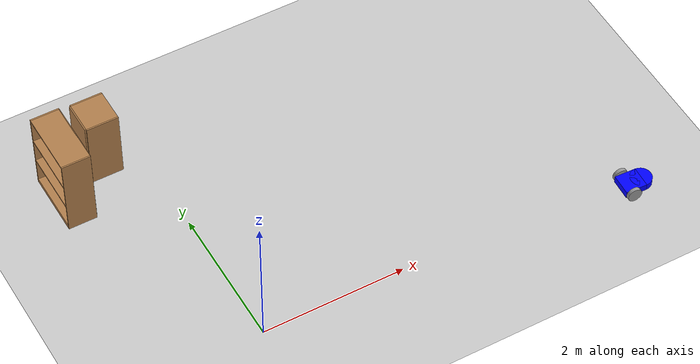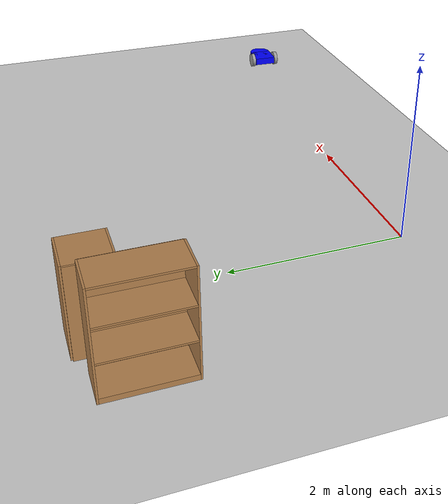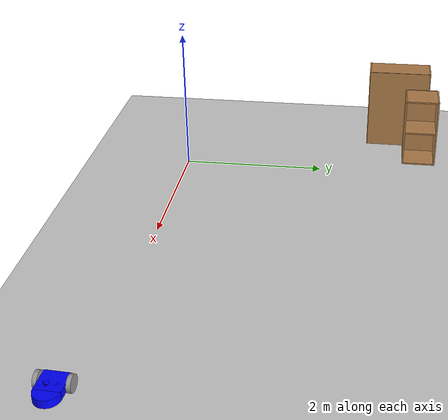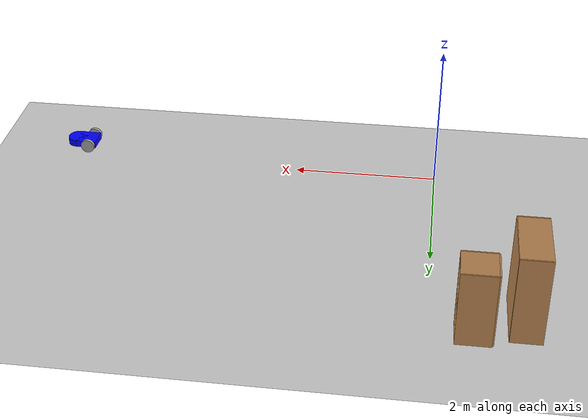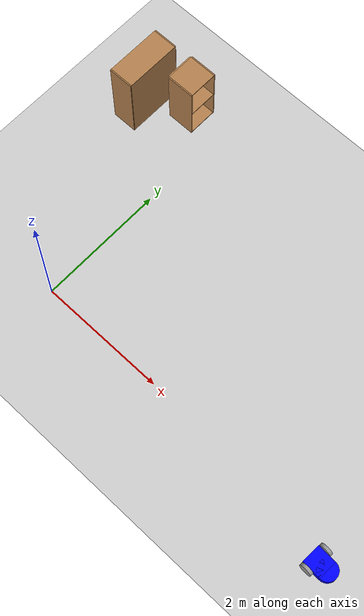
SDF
<sdf version="1.6">
 <world name="default">
  <model name="ground_plane">
   <static>1</static>
   <link name="link">
    <collision name="collision">
     <geometry><plane><normal>0 0 1</normal><size>100 100</size></plane></geometry>
     <surface>
      <contact><collide_bitmask>65535</collide_bitmask></contact>
      <friction><ode><mu>100</mu><mu2>50</mu2></ode></friction>
     </surface>
    </collision>
    <visual name="visual">
     <cast_shadows>0</cast_shadows>
     <geometry><plane><normal>0 0 1</normal><size>100 100</size></plane></geometry>
     <material>
      <script><uri>file://media/materials/scripts/gazebo.material</uri><name>Gazebo/Grey</name></script>
     </material>
    </visual>
   </link>
  </model>
  <model name="cabinet_clone_1">
   <static>1</static>
   <link name="cabinet_bottom_plate">
    <inertial>
     <pose>0 0 -1 0 -0 0</pose>
     <inertia><ixx>2.05</ixx><ixy>0</ixy><ixz>0</ixz><iyy>2.05</iyy><iyz>0</iyz><izz>2.05</izz></inertia>
     <mass>25</mass>
    </inertial>
    <collision name="cabinet_bottom_plate_geom">
     <pose>0 0 0.01 0 -0 0</pose>
     <geometry><box><size>0.45 0.45 0.02</size></box></geometry>
    </collision>
    <visual name="cabinet_bottom_plate_geom_visual">
     <pose>0 0 0.01 0 -0 0</pose>
     <geometry><box><size>0.45 0.45 0.02</size></box></geometry>
     <material>
      <script><uri>file://media/materials/scripts/gazebo.material</uri><name>Gazebo/Wood</name></script>
     </material>
    </visual>
    <collision name="cabinet_bottom_plate_geom_cabinet_back_plate">
     <pose>0.235 0 0.51 0 -0 0</pose>
     <geometry><box><size>0.02 0.45 1.02</size></box></geometry>
    </collision>
    <visual name="cabinet_bottom_plate_geom_cabinet_back_plate_visual">
     <pose>0.235 0 0.51 0 -0 0</pose>
     <geometry><box><size>0.02 0.45 1.02</size></box></geometry>
     <material>
      <script><uri>file://media/materials/scripts/gazebo.material</uri><name>Gazebo/Wood</name></script>
     </material>
    </visual>
    <collision name="cabinet_bottom_plate_geom_cabinet_left_plate">
     <pose>0 0.235 0.51 0 -0 0</pose>
     <geometry><box><size>0.45 0.02 1.02</size></box></geometry>
    </collision>
    <visual name="cabinet_bottom_plate_geom_cabinet_left_plate_visual">
     <pose>0 0.235 0.51 0 -0 0</pose>
     <geometry><box><size>0.45 0.02 1.02</size></box></geometry>
     <material>
      <script><uri>file://media/materials/scripts/gazebo.material</uri><name>Gazebo/Wood</name></script>
     </material>
    </visual>
    <collision name="cabinet_bottom_plate_geom_cabinet_middle_plate">
     <pose>0 0 0.51 0 -0 0</pose>
     <geometry><box><size>0.45 0.45 0.02</size></box></geometry>
    </collision>
    <visual name="cabinet_bottom_plate_geom_cabinet_middle_plate_visual">
     <pose>0 0 0.51 0 -0 0</pose>
     <geometry><box><size>0.45 0.45 0.02</size></box></geometry>
     <material>
      <script><uri>file://media/materials/scripts/gazebo.material</uri><name>Gazebo/Wood</name></script>
     </material>
    </visual>
    <collision name="cabinet_bottom_plate_geom_cabinet_right_plate">
     <pose>0 -0.235 0.51 0 -0 0</pose>
     <geometry><box><size>0.45 0.02 1.02</size></box></geometry>
    </collision>
    <visual name="cabinet_bottom_plate_geom_cabinet_right_plate_visual">
     <pose>0 -0.235 0.51 0 -0 0</pose>
     <geometry><box><size>0.45 0.02 1.02</size></box></geometry>
     <material>
      <script><uri>file://media/materials/scripts/gazebo.material</uri><name>Gazebo/Wood</name></script>
     </material>
    </visual>
    <collision name="cabinet_bottom_plate_geom_cabinet_top_plate">
     <pose>0 0 1.01 0 -0 0</pose>
     <geometry><box><size>0.45 0.45 0.02</size></box></geometry>
    </collision>
    <visual name="cabinet_bottom_plate_geom_cabinet_top_plate_visual">
     <pose>0 0 1.01 0 -0 0</pose>
     <geometry><box><size>0.45 0.45 0.02</size></box></geometry>
     <material>
      <script><uri>file://media/materials/scripts/gazebo.material</uri><name>Gazebo/Wood</name></script>
     </material>
    </visual>
   </link>
   <pose>-0.550061 3.45827 0 0 -0 3.1415</pose>
  </model>
  <model name="bookshelf_0">
   <static>1</static>
   <link name="link">
    <inertial><mass>1</mass></inertial>
    <collision name="back">
     <pose>0 0.005 0.6 0 -0 0</pose>
     <geometry><box><size>0.9 0.01 1.2</size></box></geometry>
    </collision>
    <visual name="visual1">
     <pose>0 0.005 0.6 0 -0 0</pose>
     <geometry><box><size>0.9 0.01 1.2</size></box></geometry>
     <material>
      <script><uri>file://media/materials/scripts/gazebo.material</uri><name>Gazebo/Wood</name></script>
     </material>
    </visual>
    <collision name="left_side">
     <pose>0.45 -0.195 0.6 0 -0 0</pose>
     <geometry><box><size>0.02 0.4 1.2</size></box></geometry>
    </collision>
    <visual name="visual2">
     <pose>0.45 -0.195 0.6 0 -0 0</pose>
     <geometry><box><size>0.02 0.4 1.2</size></box></geometry>
     <material>
      <script><uri>file://media/materials/scripts/gazebo.material</uri><name>Gazebo/Wood</name></script>
     </material>
    </visual>
    <collision name="right_side">
     <pose>-0.45 -0.195 0.6 0 -0 0</pose>
     <geometry><box><size>0.02 0.4 1.2</size></box></geometry>
    </collision>
    <visual name="visual3">
     <pose>-0.45 -0.195 0.6 0 -0 0</pose>
     <geometry><box><size>0.02 0.4 1.2</size></box></geometry>
     <material>
      <script><uri>file://media/materials/scripts/gazebo.material</uri><name>Gazebo/Wood</name></script>
     </material>
    </visual>
    <collision name="bottom">
     <pose>0 -0.195 0.03 0 -0 0</pose>
     <geometry><box><size>0.88 0.4 0.06</size></box></geometry>
    </collision>
    <visual name="visual4">
     <pose>0 -0.195 0.03 0 -0 0</pose>
     <geometry><box><size>0.88 0.4 0.06</size></box></geometry>
     <material>
      <script><uri>file://media/materials/scripts/gazebo.material</uri><name>Gazebo/Wood</name></script>
     </material>
    </visual>
    <collision name="top">
     <pose>0 -0.195 1.19 0 -0 0</pose>
     <geometry><box><size>0.88 0.4 0.02</size></box></geometry>
    </collision>
    <visual name="visual5">
     <pose>0 -0.195 1.19 0 -0 0</pose>
     <geometry><box><size>0.88 0.4 0.02</size></box></geometry>
     <material>
      <script><uri>file://media/materials/scripts/gazebo.material</uri><name>Gazebo/Wood</name></script>
     </material>
    </visual>
    <collision name="low_shelf">
     <pose>0 -0.195 0.43 0 -0 0</pose>
     <geometry><box><size>0.88 0.4 0.02</size></box></geometry>
    </collision>
    <visual name="visual6">
     <pose>0 -0.195 0.43 0 -0 0</pose>
     <geometry><box><size>0.88 0.4 0.02</size></box></geometry>
     <material>
      <script><uri>file://media/materials/scripts/gazebo.material</uri><name>Gazebo/Wood</name></script>
     </material>
    </visual>
    <collision name="high_shelf">
     <pose>0 -0.195 0.8 0 -0 0</pose>
     <geometry><box><size>0.88 0.4 0.02</size></box></geometry>
    </collision>
    <visual name="visual7">
     <pose>0 -0.195 0.8 0 -0 0</pose>
     <geometry><box><size>0.88 0.4 0.02</size></box></geometry>
     <material>
      <script><uri>file://media/materials/scripts/gazebo.material</uri><name>Gazebo/Wood</name></script>
     </material>
    </visual>
   </link>
   <pose>-0.982099 3.12059 0 0 0 -1.5708</pose>
  </model>
  <model name="robot-03_1">
   <link name="link_0">
    <pose>-4.44604 -7.61761 0.065 0 -0 0</pose>
    <inertial>
     <mass>1</mass>
     <inertia>
      <ixx>0.166667</ixx>
      <ixy>0</ixy>
      <ixz>0</ixz>
      <iyy>0.166667</iyy>
      <iyz>0</iyz>
      <izz>0.166667</izz>
     </inertia>
    </inertial>
    <visual name="visual">
     <geometry><box><size>0.3 0.3 0.1</size></box></geometry>
     <material>
      <lighting>1</lighting>
      <script><uri>file://media/materials/scripts/gazebo.material</uri><name>Gazebo/Grey</name></script>
      <shader type="pixel"><normal_map>__default__</normal_map></shader>
      <ambient>0.03 0.03 0.3 1</ambient>
      <diffuse>0 0 1 1</diffuse>
      <specular>0.01 0.01 0.01 1</specular>
      <emissive>0 0 0 1</emissive>
     </material>
    </visual>
    <collision name="collision">
     <geometry><box><size>0.3 0.3 0.1</size></box></geometry>
     <surface>
      <friction>
       <ode><mu>1</mu><mu2>1</mu2><fdir1>0 0 0</fdir1><slip1>0</slip1><slip2>0</slip2></ode>
       <torsional>
        <coefficient>1</coefficient>
        <patch_radius>0</patch_radius>
        <surface_radius>0</surface_radius>
        <use_patch_radius>1</use_patch_radius>
        <ode><slip>0</slip></ode>
       </torsional>
      </friction>
      <bounce><restitution_coefficient>0</restitution_coefficient><threshold>1e+06</threshold></bounce>
      <contact>
       <collide_without_contact>0</collide_without_contact>
       <collide_without_contact_bitmask>1</collide_without_contact_bitmask>
       <collide_bitmask>1</collide_bitmask>
       <ode>
        <soft_cfm>0</soft_cfm>
        <soft_erp>0.2</soft_erp>
        <kp>1e+13</kp>
        <kd>1</kd>
        <max_vel>0.01</max_vel>
        <min_depth>0</min_depth>
       </ode>
       <bullet>
        <split_impulse>1</split_impulse>
        <split_impulse_penetration_threshold>-0.01</split_impulse_penetration_threshold>
        <soft_cfm>0</soft_cfm>
        <soft_erp>0.2</soft_erp>
        <kp>1e+13</kp>
        <kd>1</kd>
       </bullet>
      </contact>
     </surface>
    </collision>
   </link>
   <link name="link_1">
    <pose>-4.44604 -7.76761 0.065 0 -0 0</pose>
    <inertial>
     <mass>1</mass>
     <inertia><ixx>0.145833</ixx><ixy>0</ixy><ixz>0</ixz><iyy>0.145833</iyy><iyz>0</iyz><izz>0.125</izz></inertia>
    </inertial>
    <visual name="visual">
     <geometry><cylinder><radius>0.15</radius><length>0.1</length></cylinder></geometry>
     <material>
      <lighting>1</lighting>
      <script><uri>file://media/materials/scripts/gazebo.material</uri><name>Gazebo/Grey</name></script>
      <shader type="pixel"><normal_map>__default__</normal_map></shader>
      <ambient>0.03 0.03 0.3 1</ambient>
      <diffuse>0 0 1 1</diffuse>
      <specular>0.01 0.01 0.01 1</specular>
      <emissive>0 0 0 1</emissive>
     </material>
    </visual>
    <collision name="collision">
     <geometry><cylinder><radius>0.15</radius><length>0.1</length></cylinder></geometry>
     <surface>
      <friction>
       <ode><mu>1</mu><mu2>1</mu2><fdir1>0 0 0</fdir1><slip1>0</slip1><slip2>0</slip2></ode>
       <torsional>
        <coefficient>1</coefficient>
        <patch_radius>0</patch_radius>
        <surface_radius>0</surface_radius>
        <use_patch_radius>1</use_patch_radius>
        <ode><slip>0</slip></ode>
       </torsional>
      </friction>
      <bounce><restitution_coefficient>0</restitution_coefficient><threshold>1e+06</threshold></bounce>
      <contact>
       <collide_without_contact>0</collide_without_contact>
       <collide_without_contact_bitmask>1</collide_without_contact_bitmask>
       <collide_bitmask>1</collide_bitmask>
       <ode>
        <soft_cfm>0</soft_cfm>
        <soft_erp>0.2</soft_erp>
        <kp>1e+13</kp>
        <kd>1</kd>
        <max_vel>0.01</max_vel>
        <min_depth>0</min_depth>
       </ode>
       <bullet>
        <split_impulse>1</split_impulse>
        <split_impulse_penetration_threshold>-0.01</split_impulse_penetration_threshold>
        <soft_cfm>0</soft_cfm>
        <soft_erp>0.2</soft_erp>
        <kp>1e+13</kp>
        <kd>1</kd>
       </bullet>
      </contact>
     </surface>
    </collision>
   </link>
   <link name="link_2">
    <pose>-4.44604 -7.76761 0.015 0 -0 0</pose>
    <inertial>
     <mass>1</mass>
     <inertia><ixx>0.1</ixx><ixy>0</ixy><ixz>0</ixz><iyy>0.1</iyy><iyz>0</iyz><izz>0.1</izz></inertia>
    </inertial>
    <visual name="visual">
     <geometry><sphere><radius>0.05</radius></sphere></geometry>
     <material>
      <lighting>1</lighting>
      <script><uri>file://media/materials/scripts/gazebo.material</uri><name>Gazebo/Grey</name></script>
      <shader type="pixel"><normal_map>__default__</normal_map></shader>
      <ambient>0.5 0.5 0.5 1</ambient>
      <diffuse>0.9 0.9 0.9 1</diffuse>
      <specular>0.01 0.01 0.01 1</specular>
      <emissive>0 0 0 1</emissive>
     </material>
    </visual>
    <collision name="collision">
     <geometry><sphere><radius>0.05</radius></sphere></geometry>
     <surface>
      <friction>
       <ode><mu>1</mu><mu2>1</mu2><fdir1>0 0 0</fdir1><slip1>0</slip1><slip2>0</slip2></ode>
       <torsional>
        <coefficient>1</coefficient>
        <patch_radius>0</patch_radius>
        <surface_radius>0</surface_radius>
        <use_patch_radius>1</use_patch_radius>
        <ode><slip>0</slip></ode>
       </torsional>
      </friction>
      <bounce><restitution_coefficient>0</restitution_coefficient><threshold>1e+06</threshold></bounce>
      <contact>
       <collide_without_contact>0</collide_without_contact>
       <collide_without_contact_bitmask>1</collide_without_contact_bitmask>
       <collide_bitmask>1</collide_bitmask>
       <ode>
        <soft_cfm>0</soft_cfm>
        <soft_erp>0.2</soft_erp>
        <kp>1e+13</kp>
        <kd>1</kd>
        <max_vel>0.01</max_vel>
        <min_depth>0</min_depth>
       </ode>
       <bullet>
        <split_impulse>1</split_impulse>
        <split_impulse_penetration_threshold>-0.01</split_impulse_penetration_threshold>
        <soft_cfm>0</soft_cfm>
        <soft_erp>0.2</soft_erp>
        <kp>1e+13</kp>
        <kd>1</kd>
       </bullet>
      </contact>
     </surface>
    </collision>
   </link>
   <link name="link_3">
    <pose>-4.62604 -7.56761 0.065 3.14159 1.56351 3.14159</pose>
    <inertial>
     <mass>1</mass>
     <inertia><ixx>0.145833</ixx><ixy>0</ixy><ixz>0</ixz><iyy>0.145833</iyy><iyz>0</iyz><izz>0.125</izz></inertia>
    </inertial>
    <visual name="visual">
     <geometry><cylinder><radius>0.1</radius><length>0.05</length></cylinder></geometry>
     <material>
      <lighting>1</lighting>
      <script><uri>file://media/materials/scripts/gazebo.material</uri><name>Gazebo/Grey</name></script>
      <shader type="pixel"><normal_map>__default__</normal_map></shader>
      <ambient>0.2 0.2 0.2 1</ambient>
      <diffuse>0.5 0.5 0.5 1</diffuse>
      <specular>0.01 0.01 0.01 1</specular>
      <emissive>0 0 0 1</emissive>
     </material>
    </visual>
    <collision name="collision">
     <geometry><cylinder><radius>0.1</radius><length>0.05</length></cylinder></geometry>
     <surface>
      <friction>
       <ode><mu>1</mu><mu2>1</mu2><fdir1>0 0 0</fdir1><slip1>0</slip1><slip2>0</slip2></ode>
       <torsional>
        <coefficient>1</coefficient>
        <patch_radius>0</patch_radius>
        <surface_radius>0</surface_radius>
        <use_patch_radius>1</use_patch_radius>
        <ode><slip>0</slip></ode>
       </torsional>
      </friction>
      <bounce><restitution_coefficient>0</restitution_coefficient><threshold>1e+06</threshold></bounce>
      <contact>
       <collide_without_contact>0</collide_without_contact>
       <collide_without_contact_bitmask>1</collide_without_contact_bitmask>
       <collide_bitmask>1</collide_bitmask>
       <ode>
        <soft_cfm>0</soft_cfm>
        <soft_erp>0.2</soft_erp>
        <kp>1e+13</kp>
        <kd>1</kd>
        <max_vel>0.01</max_vel>
        <min_depth>0</min_depth>
       </ode>
       <bullet>
        <split_impulse>1</split_impulse>
        <split_impulse_penetration_threshold>-0.01</split_impulse_penetration_threshold>
        <soft_cfm>0</soft_cfm>
        <soft_erp>0.2</soft_erp>
        <kp>1e+13</kp>
        <kd>1</kd>
       </bullet>
      </contact>
     </surface>
    </collision>
   </link>
   <link name="link_3_clone">
    <pose>-4.26604 -7.56761 0.065 3.14159 1.56351 3.14159</pose>
    <inertial>
     <mass>1</mass>
     <inertia><ixx>0.145833</ixx><ixy>0</ixy><ixz>0</ixz><iyy>0.145833</iyy><iyz>0</iyz><izz>0.125</izz></inertia>
    </inertial>
    <visual name="visual">
     <geometry><cylinder><radius>0.1</radius><length>0.05</length></cylinder></geometry>
     <material>
      <lighting>1</lighting>
      <script><uri>file://media/materials/scripts/gazebo.material</uri><name>Gazebo/Grey</name></script>
      <shader type="pixel"><normal_map>__default__</normal_map></shader>
      <ambient>0.2 0.2 0.2 1</ambient>
      <diffuse>0.5 0.5 0.5 1</diffuse>
      <specular>0.01 0.01 0.01 1</specular>
      <emissive>0 0 0 1</emissive>
     </material>
    </visual>
    <collision name="collision">
     <geometry><cylinder><radius>0.1</radius><length>0.05</length></cylinder></geometry>
     <surface>
      <friction>
       <ode><mu>1</mu><mu2>1</mu2><fdir1>0 0 0</fdir1><slip1>0</slip1><slip2>0</slip2></ode>
       <torsional>
        <coefficient>1</coefficient>
        <patch_radius>0</patch_radius>
        <surface_radius>0</surface_radius>
        <use_patch_radius>1</use_patch_radius>
        <ode><slip>0</slip></ode>
       </torsional>
      </friction>
      <bounce><restitution_coefficient>0</restitution_coefficient><threshold>1e+06</threshold></bounce>
      <contact>
       <collide_without_contact>0</collide_without_contact>
       <collide_without_contact_bitmask>1</collide_without_contact_bitmask>
       <collide_bitmask>1</collide_bitmask>
       <ode>
        <soft_cfm>0</soft_cfm>
        <soft_erp>0.2</soft_erp>
        <kp>1e+13</kp>
        <kd>1</kd>
        <max_vel>0.01</max_vel>
        <min_depth>0</min_depth>
       </ode>
       <bullet>
        <split_impulse>1</split_impulse>
        <split_impulse_penetration_threshold>-0.01</split_impulse_penetration_threshold>
        <soft_cfm>0</soft_cfm>
        <soft_erp>0.2</soft_erp>
        <kp>1e+13</kp>
        <kd>1</kd>
       </bullet>
      </contact>
     </surface>
    </collision>
   </link>
   <joint name="link_0_JOINT_1" type="fixed">
    <parent>link_0</parent>
    <child>link_1</child>
    <physics>
     <ode><limit><cfm>0</cfm><erp>0.2</erp></limit><suspension><cfm>0</cfm><erp>0.2</erp></suspension></ode>
    </physics>
   </joint>
   <joint name="link_0_JOINT_3" type="revolute">
    <parent>link_0</parent>
    <child>link_3</child>
    <axis>
     <xyz>0 0 1</xyz>
     <use_parent_model_frame>0</use_parent_model_frame>
     <limit>
      <lower>-1.79769e+308</lower>
      <upper>1.79769e+308</upper>
      <effort>-1</effort>
      <velocity>-1</velocity>
     </limit>
     <dynamics>
      <spring_reference>0</spring_reference>
      <spring_stiffness>0</spring_stiffness>
      <damping>0</damping>
      <friction>0</friction>
     </dynamics>
    </axis>
    <physics>
     <ode><limit><cfm>0</cfm><erp>0.2</erp></limit><suspension><cfm>0</cfm><erp>0.2</erp></suspension></ode>
    </physics>
   </joint>
   <joint name="link_0_JOINT_4" type="revolute">
    <parent>link_0</parent>
    <child>link_3_clone</child>
    <axis>
     <xyz>0 0 1</xyz>
     <use_parent_model_frame>0</use_parent_model_frame>
     <limit>
      <lower>-1.79769e+308</lower>
      <upper>1.79769e+308</upper>
      <effort>-1</effort>
      <velocity>-1</velocity>
     </limit>
     <dynamics>
      <spring_reference>0</spring_reference>
      <spring_stiffness>0</spring_stiffness>
      <damping>0</damping>
      <friction>0</friction>
     </dynamics>
    </axis>
    <physics>
     <ode><limit><cfm>0</cfm><erp>0.2</erp></limit><suspension><cfm>0</cfm><erp>0.2</erp></suspension></ode>
    </physics>
   </joint>
   <joint name="link_1_JOINT_2" type="fixed">
    <parent>link_1</parent>
    <child>link_2</child>
    <physics>
     <ode><limit><cfm>0</cfm><erp>0.2</erp></limit><suspension><cfm>0</cfm><erp>0.2</erp></suspension></ode>
    </physics>
   </joint>
   <static>0</static>
   <pose>-2.16901 4.52755 0.041987 0.000899 -2e-06 1.52125</pose>
  </model>
 </world>
</sdf>
